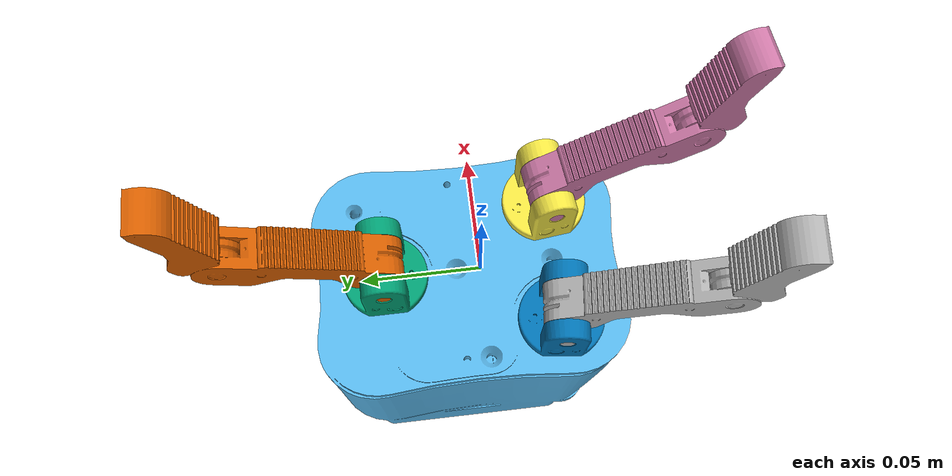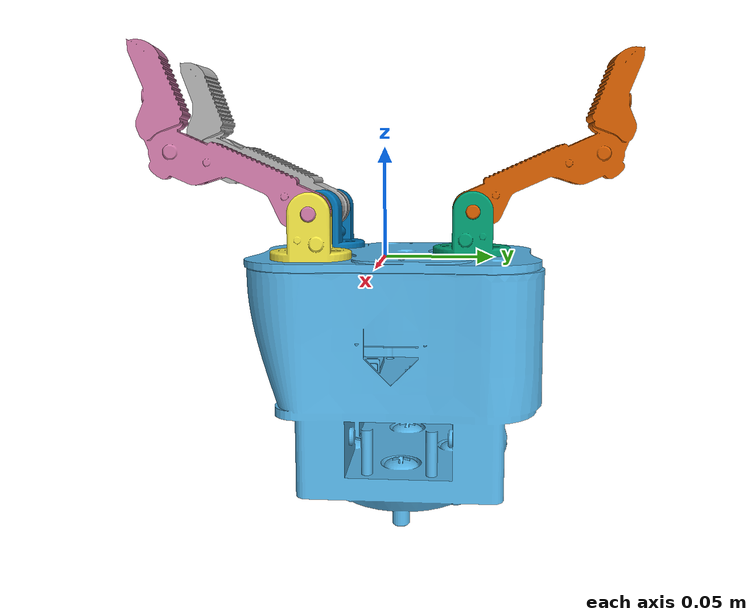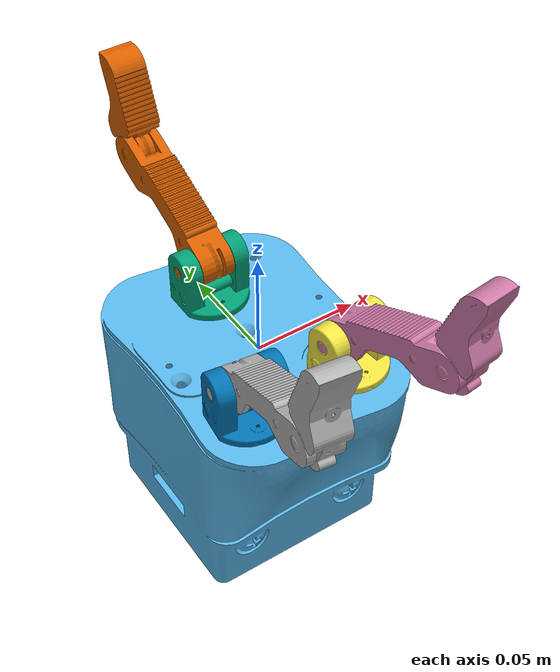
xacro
<?xml version="1.0"?>
<robot name="hand" xmlns:xacro="http://ros.org/wiki/xacro">

 <!-- common stuff -->
 <xacro:include filename="$(find wezelROS)/description/urdf/common.gazebo.xacro" />

 <xacro:include filename="$(find wezelROS)/description/urdf/chwytak.urdf.xacro" />

 <link name="base_link2"/>

 <xacro:hand parent="base_link2" name="left_hand" side="-1">
    <origin xyz="0 0 0"  rpy= "0 0 0" />
  </xacro:hand>

   <link name="world" />

  <joint name="world_joint" type="fixed">
    <parent link="world" />
    <child link = "base_link2" />
    <origin xyz="0.0 0.0 0.0" rpy="0.0 0.0 0.0" />
  </joint>

</robot>

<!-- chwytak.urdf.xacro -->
<robot xmlns:xacro="http://ros.org/wiki/xacro" name="chwytak">
<xacro:include filename="$(find wezelROS)/description/urdf/hand.transmission.xacro" />
<xacro:include filename="$(find wezelROS)/description/urdf/hand.gazebo.xacro" />
<xacro:macro name="hand" params="parent name side *origin">
  <link name="base_link">
    <visual>
      <geometry>
        <mesh filename="package://wezelROS/description/meshes/base.dae"/>
      </geometry>
      <origin xyz="0 0 0" rpy="1.57 0 3.14"/>
    </visual>
    <collision>
      <geometry>
        <mesh filename="package://wezelROS/description/meshes/base.dae"/>
      </geometry>
      <origin xyz="0 0 0" rpy="1.57 0 3.14"/>
    </collision>
    <inertial>
      <mass value="0.848"/>
      <inertia ixx="0" ixy="0" ixz="0" iyy="0" iyz="0" izz="0" />
      <origin xyz="-0.000161 -0.049378 0.009251" rpy="1.57 0 3.14"/>
    </inertial>
  </link>

  <link name="rotator_link1">
    <visual>
      <geometry>
        <mesh filename="package://wezelROS/description/meshes/finger_rotator.dae"/>
      </geometry>
      <origin xyz="0 0 0" rpy="1.57 0 0"/>
    </visual>
    <collision>
      <geometry>
        <mesh filename="package://wezelROS/description/meshes/finger_rotator.dae"/>
      </geometry>
      <origin xyz="0 0 0" rpy="1.57 0 0"/>
    </collision>
    <inertial>
      <mass value="0.011"/>
	<inertia ixx="0" ixy="0" ixz="0" iyy="0" iyz="0" izz="0" />
      <origin xyz="0 -0.011 0" rpy="1.57 0 0"/>
    </inertial>
  </link>

  <link name="rotator_link2">
    <visual>
      <geometry>
        <mesh filename="package://wezelROS/description/meshes/finger_rotator.dae"/>
      </geometry>
      <origin xyz="0 0 0" rpy="1.57 0 3.14"/>
    </visual>
    <collision>
      <geometry>
        <mesh filename="package://wezelROS/description/meshes/finger_rotator.dae"/>
      </geometry>
      <origin xyz="0 0 0" rpy="1.57 0 3.14"/>
    </collision>
    <inertial>
      <mass value="0.011"/>
	<inertia ixx="0" ixy="0" ixz="0" iyy="0" iyz="0" izz="0" />
      <origin xyz="0 -0.011 0" rpy="1.57 0 3.14"/>
    </inertial>
  </link>

  <link name="rotator_link3">
    <visual>
      <geometry>
        <mesh filename="package://wezelROS/description/meshes/finger_rotator.dae"/>
      </geometry>
      <origin xyz="0 0 0" rpy="1.57 0 3.14"/>
    </visual>
    <collision>
      <geometry>
        <mesh filename="package://wezelROS/description/meshes/finger_rotator.dae"/>
      </geometry>
      <origin xyz="0 0 0" rpy="1.57 0 3.14"/>
    </collision>
    <inertial>
      <mass value="0.011"/>
	<inertia ixx="0" ixy="0" ixz="0" iyy="0" iyz="0" izz="0" />
      <origin xyz="0 -0.011 0" rpy="1.57 0 3.14"/>
    </inertial>
  </link>

  <link name="finger_link1">
    <visual>
      <geometry>
        <mesh filename="package://wezelROS/description/meshes/finger.dae"/>
      </geometry>
      <origin xyz="0 0 0" rpy="1.57 0 0"/>
    </visual>
    <collision>
      <geometry>
        <mesh filename="package://wezelROS/description/meshes/finger.dae"/>
      </geometry>
      <origin xyz="0 0 0" rpy="1.57 0 0"/>
    </collision>
    <inertial>
      <mass value="0.025"/>
	<inertia ixx="0" ixy="0" ixz="0" iyy="0" iyz="0" izz="0" />
      <origin xyz="0 0.028 -0.042" rpy="1.57 0 0"/>
    </inertial>
  </link>

  <link name="finger_link2">
    <visual>
      <geometry>
        <mesh filename="package://wezelROS/description/meshes/finger.dae"/>
      </geometry>
      <origin xyz="0 0 0" rpy="1.57 0 3.14"/>
    </visual>
    <collision>
      <geometry>
        <mesh filename="package://wezelROS/description/meshes/finger.dae"/>
      </geometry>
      <origin xyz="0 0 0" rpy="1.57 0 3.14"/>
    </collision>
    <inertial>
      <mass value="0.025"/>
	<inertia ixx="0" ixy="0" ixz="0" iyy="0" iyz="0" izz="0" />
      <origin xyz="0 0.028 -0.042" rpy="1.57 0 3.14"/>
    </inertial>
  </link>

  <link name="finger_link3">
    <visual>
      <geometry>
        <mesh filename="package://wezelROS/description/meshes/finger.dae"/>
      </geometry>
      <origin xyz="0 0 0" rpy="1.57 0 3.14"/>
    </visual>
    <collision>
      <geometry>
        <mesh filename="package://wezelROS/description/meshes/finger.dae"/>
      </geometry>
      <origin xyz="0 0 0" rpy="1.57 0 3.14"/>
    </collision>
    <inertial>
      <mass value="0.025"/>
	<inertia ixx="0" ixy="0" ixz="0" iyy="0" iyz="0" izz="0" />
      <origin xyz="0 0.028 -0.042" rpy="1.57 0 3.14"/>
    </inertial>
  </link>

  <joint name="joint_base" type="fixed">
        <parent link="${parent}" />
        <child link="base_link" />
        <origin xyz="0 0 0" rpy="0 0 0" />
        <axis xyz="0 0 1" />
  </joint>

  <joint name="rotator1" type="fixed">
    <parent link="base_link"/>
    <child link="rotator_link1"/>
    <axis xyz="0 0 1"/>
    <origin xyz="0 0.04 0.021352"/>
  </joint>

  <joint name="rotator2" type="continuous">
    <parent link="base_link"/>
    <child link="rotator_link2"/>
    <axis xyz="0 0 1"/>
    <origin xyz="0.026 -0.030397 0.021352" rpy="0 0 0.1185"/>
    <limit lower="-1.57" upper="1.57" effort="30" velocity="5"/>
  </joint>

  <joint name="rotator3" type="continuous">
    <parent link="base_link"/>
    <child link="rotator_link3"/>
    <axis xyz="0 0 1"/>
    <origin xyz="-0.026 -0.030397 0.021352" rpy="0 0 -0.1185"/>
    <limit lower="-1.57" upper="1.57" effort="30" velocity="5"/>
    <mimic joint="rotator2" multiplier="-1"/>
  </joint>

  <joint name="finger1" type="revolute">
    <parent link="rotator_link1"/>
    <child link="finger_link1"/>
    <axis xyz="1 0 0"/>
    <origin xyz="0 0 0"/>
    <limit lower="-1" upper="1.57" effort="30" velocity="5"/>
  </joint>

  <joint name="finger2" type="revolute">
    <parent link="rotator_link2"/>
    <child link="finger_link2"/>
    <axis xyz="1 0 0"/>
    <origin xyz="0 0 0"/>
    <limit lower="-1.57" upper="1" effort="30" velocity="5"/>
  </joint>

  <joint name="finger3" type="revolute">
    <parent link="rotator_link3"/>
    <child link="finger_link3"/>
    <axis xyz="1 0 0"/>
    <origin xyz="0 0 0"/>
    <limit lower="-1.57" upper="1" effort="30" velocity="5"/>
  </joint>

   <xacro:hand_transmission name="${name}" />
    <xacro:hand_gazebo name="${name}" />

</xacro:macro>
</robot>
